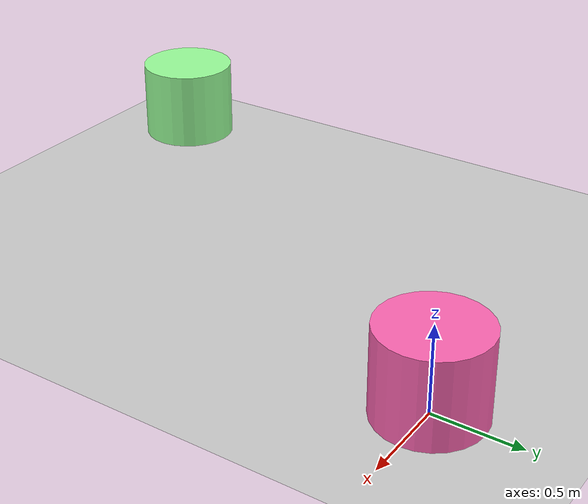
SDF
<?xml version="1.0" ?>
<sdf version="1.6">
  <world name="default">
    <!-- 基础环境：地面、光照 -->
    <include>
      <uri>model://ground_plane</uri>
    </include>
    <include>
      <uri>model://sun</uri>
    </include>

    <!-- 新增：加载 obstacle1 模型（放在原点） -->
    <model name='obstacle1'>
      <static>false</static>  <!-- 关闭静态，允许运动 -->
      <pose>0.0 0.0 0.25 0 0 0</pose>  <!-- 原点位置，Z=0.25 适配圆柱体贴地 -->
      <!-- 引入 obstacle1 模型文件 -->
      <include>
        <uri>file:///home/ros2/Desktop/pb_rmsimulation/src/rm_simulation/pb_rm_simulation/meshes/obstacles/obstacle1</uri>
      </include>
      <!-- 加载 obstacle1 运动插件 -->
      <plugin name="obstacle1_motion" filename="/home/ros2/Desktop/pb_rmsimulation/src/rm_simulation/pb_rm_simulation/world/obstacles/lib/libobstacle1.so"/>
    </model>

    <!-- 新增：加载 obstacle2 模型（放在原点） -->
    <model name='obstacle2'>
      <static>false</static>  <!-- 关闭静态，允许运动 -->
      <pose>-2.0 -3.0 0.25 0 0 0</pose>  <!-- 原点位置，Z=0.25 适配圆柱体贴地 -->
      <!-- 引入 obstacle2 模型文件 -->
      <include>
        <uri>file:///home/ros2/Desktop/pb_rmsimulation/src/rm_simulation/pb_rm_simulation/meshes/obstacles/obstacle2</uri>
      </include>
      <!-- 加载 obstacle2 运动插件 -->
      <plugin name="obstacle2_motion" filename="/home/ros2/Desktop/pb_rmsimulation/src/rm_simulation/pb_rm_simulation/world/obstacles/lib/libobstacle2.so"/>
    </model>

  </world>
</sdf>

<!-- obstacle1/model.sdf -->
<sdf version='1.6'>
    <model name="obstacle1">
      <link name="link_obstacle1">
        <collision name="collision">
          <geometry>
            <cylinder>
              <radius>0.3</radius>
              <length>0.50</length>
            </cylinder>
          </geometry>
        </collision>

        <visual name="visual">
          <geometry>
            <cylinder>
              <radius>0.3</radius>
              <length>0.50</length>
            </cylinder>
          </geometry>
          <material>
            <ambient>1.0 0.4 0.7 1.0</ambient>
            <diffuse>1.0 0.4 0.7 1.0</diffuse>
            <specular>0.2 0.2 0.2 1.0</specular>
            <emissive>0.05 0.0 0.03 1.0</emissive>
          </material>
        </visual>
      </link>
      <plugin name="p3d_base_controller_obstacle1" filename="libgazebo_ros_p3d.so">
        <ros>
          <namespace>/obstacle</namespace>
          <remapping>odom:=odom</remapping>
        </ros>
        <always_on>true</always_on>
        <update_rate>50.0</update_rate>
        <body_name>link_obstacle1</body_name>
        <topic_name>odom_obs</topic_name>
        <gaussian_noise>0.0</gaussian_noise>
        <frame_name>world</frame_name>
        <xyz_offset>0 0 0</xyz_offset>
        <rpy_offset>0 0 0</rpy_offset>
      </plugin>
    </model>
</sdf>

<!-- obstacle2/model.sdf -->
<sdf version='1.6'>
    <model name="obstacle2">
      <link name="link_obstacle2">
        <collision name="collision">
          <geometry>
            <cylinder>
              <radius>0.3</radius>
              <length>0.50</length>
            </cylinder>
          </geometry>
        </collision>

        <visual name="visual">
          <geometry>
            <cylinder>
              <radius>0.3</radius>
              <length>0.50</length>
            </cylinder>
          </geometry>
          <material>
            <ambient>0.6 1.0 0.6 1.0</ambient>
            <diffuse>0.6 1.0 0.6 1.0</diffuse>
            <specular>0.2 0.2 0.2 1.0</specular>
            <emissive>0.05 0.10 0.05 1.0</emissive>
          </material>
        </visual>
      </link>
      <plugin name="p3d_base_controller_obstacle2" filename="libgazebo_ros_p3d.so">
        <ros>
          <namespace>/obstacle</namespace>
          <remapping>odom:=odom</remapping>
        </ros>
        <always_on>true</always_on>
        <update_rate>50.0</update_rate>
        <body_name>link_obstacle2</body_name>
        <topic_name>odom_obs</topic_name>
        <gaussian_noise>0.0</gaussian_noise>
        <frame_name>world</frame_name>
        <xyz_offset>0 0 0</xyz_offset>
        <rpy_offset>0 0 0</rpy_offset>
      </plugin>
    </model>
</sdf>
